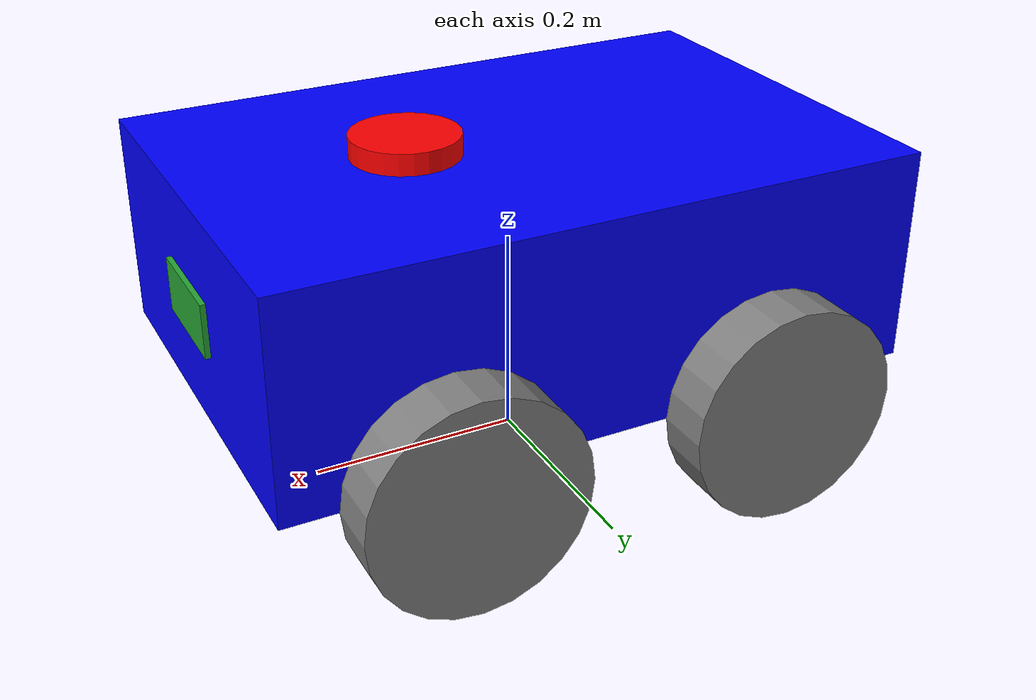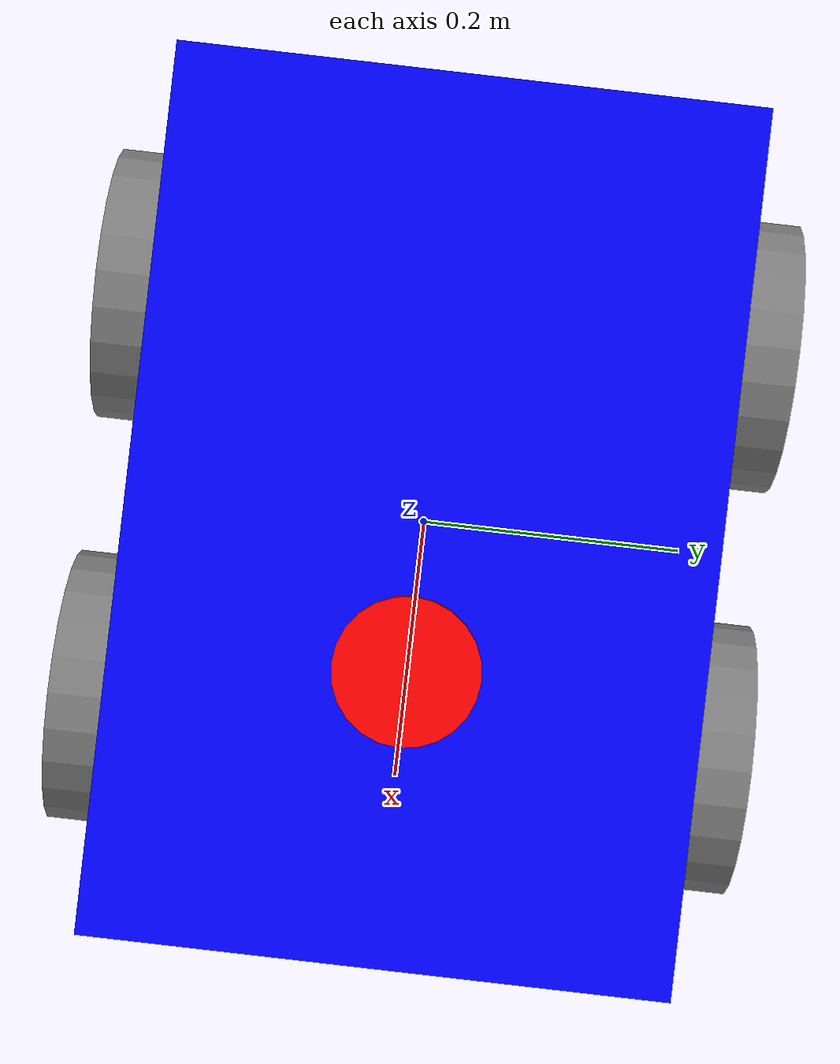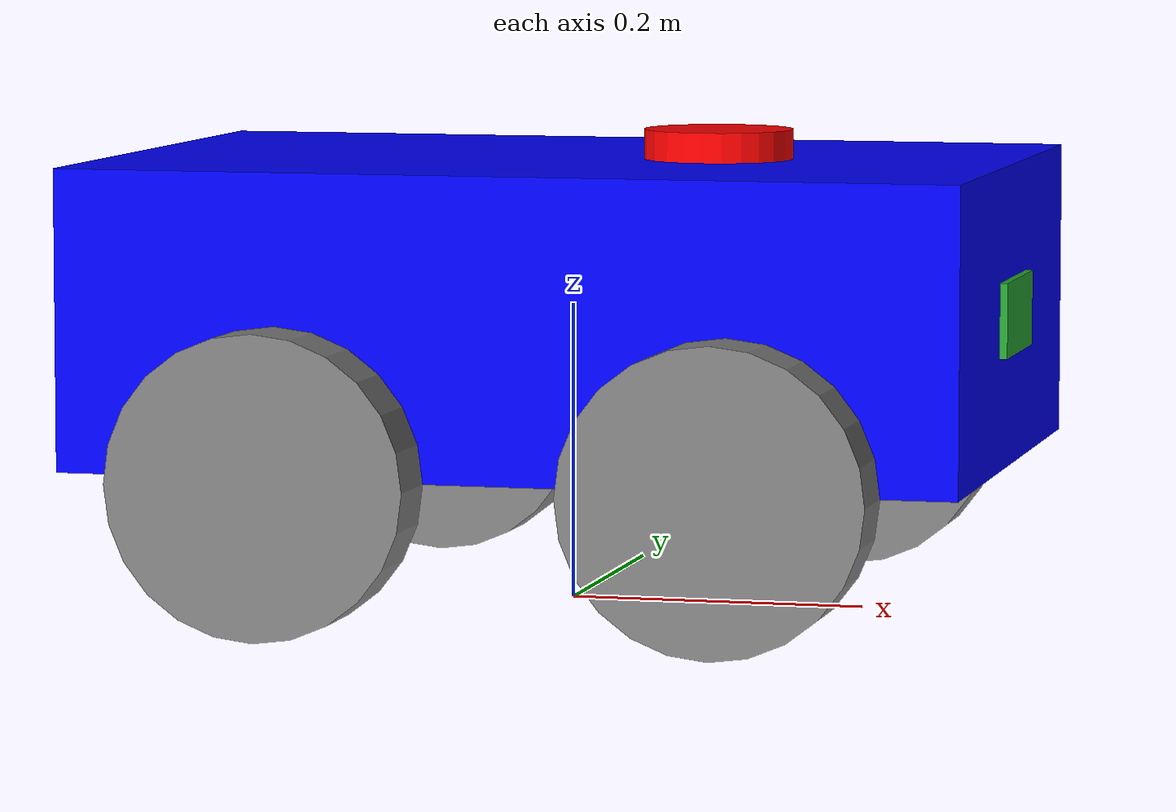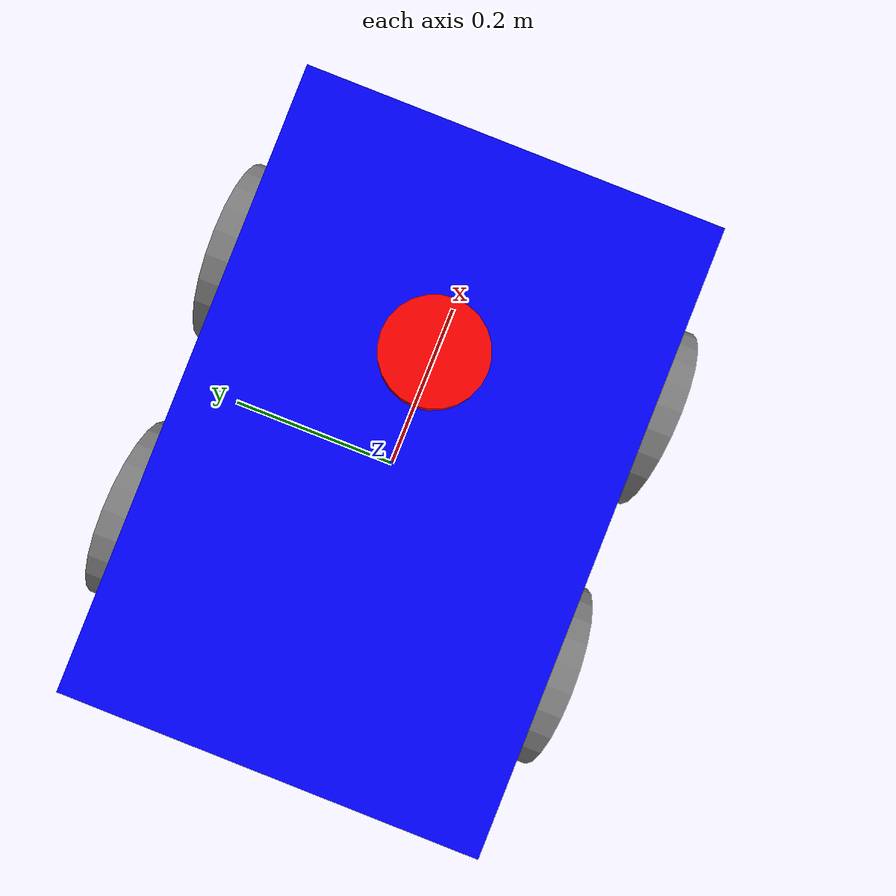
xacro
<?xml version="1.0"?>
<robot name = "my_robot" xmlns:xacro="http://www.ros.org/wiki/xacro">

    <xacro:include filename="common_properties.urdf.xacro" />
    <xacro:include filename="mobile_base.urdf.xacro" />
    <xacro:include filename="mobile_base_gazebo.xacro" />
     <xacro:include filename="lidar.xacro" />
    <xacro:include filename="ultrasonic.xacro" />

</robot>

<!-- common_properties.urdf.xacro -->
<robot xmlns:xacro="http://www.ros.org/wiki/xacro">

    <material name = "blue">
        <color rgba = "0 0 1 1"></color>
    </material>

    <material name = "grey">
        <color rgba = "0.5 0.5 0.5 1"></color>
    </material>

    <material name = "red">
        <color rgba = "1 0 0 1"></color>
    </material>

    <xacro:macro name="box_inertia" params="m l w h xyz rpy">
        <inertial>
            <origin  xyz="${xyz}" rpy="${rpy}"/>
            <mass value="${m}"/>
            <inertia ixx="${(m/12) * (h*h+l*l)}" ixy="0" ixz="0"
                     iyy="${(m/12) * (w*w + l*l)}" iyz="0"
                     izz="${(m/12) * (w*w + h*h)}"
            />
        </inertial>
    </xacro:macro>

    <xacro:macro name="cylinder_inertia" params="m r h xyz rpy">
        <inertial>
            <origin xyx="${xyz}" rpy="${rpy}"/>
            <mass value="${m}"/>
            <inertia ixx="${(m/12) * (3*r*r + h*h)}" ixy="0" ixz="0"
                     iyy="${(m/12) * (3*r*r + h*h)}" iyz="0"
                     izz="${(m/2) * (r*r)}"
            />

        </inertial>
    </xacro:macro>

</robot>

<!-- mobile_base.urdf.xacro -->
<robot xmlns:xacro="http://www.ros.org/wiki/xacro">

    <xacro:property name="base_length" value="0.6" />
    <xacro:property name="base_width" value="0.4" />
    <xacro:property name="base_height" value="0.2" />
    <xacro:property name="wheel_radius" value="0.1" />
    <xacro:property name="wheel_length" value="0.05" />

    <link name = "base_footprint_link" />

    <link name = "base_link">
        <visual>
            <geometry>
                <box size = "${base_length} ${base_width} ${base_height}"></box>
            </geometry>
            <origin xyz = "0 0 ${base_height / 2.0}" rpy = "0 0 0"></origin>
            <material name = "blue"/>
        </visual>
        <collision>
            <geometry>
                <box size = "${base_length} ${base_width} ${base_height}"></box>
            </geometry>
            <origin xyz = "0 0 ${base_height / 2.0}" rpy = "0 0 0"></origin>
        </collision>
        <xacro:box_inertia m="5.0" l="${3*base_length}" w="${3*base_width}" h="${3*base_height}"
                           xyz="0 0 ${3*base_height / 2.0}" rpy="0 0 0" />
    </link>

    <xacro:macro name="wheel_link" params="prefix">
        <link name = "${prefix}_wheel_link">
            <visual>
                <geometry>
                    <cylinder radius = "${wheel_radius}" length = "${wheel_length}" />
                </geometry>
                <origin xyz = "0 0 0" rpy = "${pi / 2.0} 0 0" />
                <material name = "grey" />
            </visual>
            <collision>
                <geometry>
                    <cylinder radius = "${wheel_radius}" length = "${wheel_length}" />
                </geometry>
                <origin xyz = "0 0 0" rpy = "${pi / 2.0} 0 0" />
            </collision>
            <xacro:cylinder_inertia m ="1.0" r="${3*wheel_radius}" h="${3*wheel_length}" xyz=" 0 0 0"
                                    rpy="${pi / 2.0} 0 0" />
        </link>
    </xacro:macro>

    <xacro:wheel_link prefix="right"/>
    <xacro:wheel_link prefix="left"/>
    <xacro:wheel_link prefix="right_front"/>
    <xacro:wheel_link prefix="left_front"/>

    <joint name = "base_footprint_base_joint" type = "fixed">
        <parent link = "base_footprint_link" />
        <child link = "base_link" />
        <origin xyz = "0 0 0.1" rpy = "0 0 0" />
    </joint>

    <joint name = "base_right_wheel_joint" type = "continuous">
        <parent link = "base_link" />
        <child link = "right_wheel_link" />
        <origin xyz = "${-base_length / 4.0} ${-(base_width + wheel_length) / 2.0} 0" rpy = "0 0 0" />
        <axis xyz = "0 1 0" />
    </joint>

    <joint name = "base_left_wheel_joint" type = "continuous">
        <parent link = "base_link" />
        <child link = "left_wheel_link" />
        <origin xyz = "${-base_length / 4.0} ${(base_width + wheel_length) / 2.0} 0" rpy = "0 0 0" />
        <axis xyz = "0 1 0" />
    </joint>

    <joint name = "base_right_front_wheel_joint" type = "continuous">
        <parent link = "base_link" />
        <child link = "right_front_wheel_link" />
        <origin xyz = "${base_length / 4.0} ${-(base_width + wheel_length) / 2.0} 0" rpy = "0 0 0" />
        <axis xyz = "0 1 0" />
    </joint>

    <joint name = "base_left_front_wheel_joint" type = "continuous">
        <parent link = "base_link" />
        <child link = "left_front_wheel_link" />
        <origin xyz = "${base_length / 4.0} ${(base_width + wheel_length) / 2.0} 0" rpy = "0 0 0" />
        <axis xyz = "0 1 0" />
    </joint>

</robot>

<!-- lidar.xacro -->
<robot xmlns:xacro="http://www.ros.org/wiki/xacro">

    <xacro:property name="lidar_radius" value="0.05" />
    <xacro:property name="lidar_length" value="0.04" />

    <link name="lidar_link">
        <visual>
            <geometry>
                <cylinder radius = "${lidar_radius}" length = "${lidar_length}" />
            </geometry>
            <material name="red" />
        </visual>
        <collision>
            <geometry>
                <cylinder radius = "${lidar_radius}" length = "${lidar_length}" />
            </geometry>
        </collision>
        <xacro:cylinder_inertia m ="0.1" r="${lidar_radius}" h="${lidar_length}" xyz=" 0 0 0"
                                    rpy="0 0 0" />
    </link>

    <joint name="base_lidar_joint" type="fixed">
        <parent link="base_link"/>
        <child link="lidar_link"/>
        <origin xyz="0.1 0 0.2" rpy="0 0 0"/>
    </joint>

    <gazebo reference="lidar_link">
        <material>Gazebo/Red</material>

        <sensor name="lidar" type="ray">
            <pose> 0 0 0 0 0 0 </pose>
            <visualize>true</visualize>
            <update_rate>30</update_rate>
            <ray>
                <scan>
                    <horizontal>
                        <samples>360</samples>
                        <min_angle>-3.14</min_angle>
                        <max_angle>3.14</max_angle>
                    </horizontal>
                </scan>
                <range>
                    <min>0.3</min>
                    <max>12</max>
                </range>
            </ray>
            <plugin name="lidar_controller" filename="libgazebo_ros_ray_sensor.so">
                <ros>
                    <argument>~/out:=scan</argument>
                </ros>
                <output_type>sensor_msgs/LaserScan</output_type>
                <frame_name>lidar_link</frame_name>
            </plugin>
        </sensor>
    </gazebo>

</robot>

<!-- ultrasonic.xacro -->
<robot xmlns:xacro="http://www.ros.org/wiki/xacro">

    <xacro:property name="ultrasonic_length" value="0.01" />
    <xacro:property name="ultrasonic_width" value="0.1" />
    <xacro:property name="ultrasonic_height" value="0.05" />

    <link name = "ultrasonic_link">
        <visual>
            <geometry>
                <box size = "${ultrasonic_length} ${ultrasonic_width} ${ultrasonic_height}"></box>
            </geometry>
            <material name = "green"/>
        </visual>
        <collision>
            <geometry>
                <box size = "${ultrasonic_length} ${ultrasonic_width} ${ultrasonic_height}"></box>
            </geometry>
        </collision>
        <xacro:box_inertia m="5.0" l="${ultrasonic_length}" w="${ultrasonic_width}"
                           h="${ultrasonic_height}" xyz="0 0 0" rpy="0 0 0" />
    </link>

    <joint name="base_ultrasonic_joint" type="fixed">
        <parent link="base_link"/>
        <child link="ultrasonic_link"/>
        <origin xyz="0.3 0 0.1" rpy="0 0 0"/>
    </joint>

    <gazebo reference="ultrasonic_link">
        <material>Gazebo/Green</material>

        <sensor type="gpu_ray" name="range_sensor">
            <visualize>true</visualize>

            <ray>
                <scan>
                    <horizontal>
                        <samples>10</samples>
                        <resolution>1</resolution>
                        <min_angle>-0.087</min_angle>
                        <max_angle>0.087</max_angle>
                    </horizontal>
                    <vertical>
                        <samples>10</samples>
                        <resolution>1</resolution>
                        <min_angle>-0.087</min_angle>
                        <max_angle>0.087</max_angle>
                    </vertical>
                </scan>
                <range>
                    <min>0.10</min>
                    <max>5.0</max>
                    <resolution>1</resolution>
                </range>
            <!-- Using gazebo's noise instead of plugin's -->
                <noise>
                    <type>gaussian</type>
                    <mean>0.0</mean>
                    <stddev>0.01</stddev>
                </noise>
            </ray>
            <!-- Using gazebo's update rate instead of plugin's -->
            <update_rate>30</update_rate>
            <plugin name="ultrasonic_controller" filename="libgazebo_ros_ray_sensor.so">
            <!-- Change namespace and output topic so published topic is /rrbot/laser/scan -->
                <ros>
                    <remapping>~/out:=range</remapping>
                </ros>
            <!-- Set output to sensor_msgs/Range to get same output type as gazebo_ros_range -->
                <output_type>sensor_msgs/Range</output_type>
                <frame_name>ultrasonic_link</frame_name>
            </plugin>
        </sensor>
    </gazebo>

</robot>
